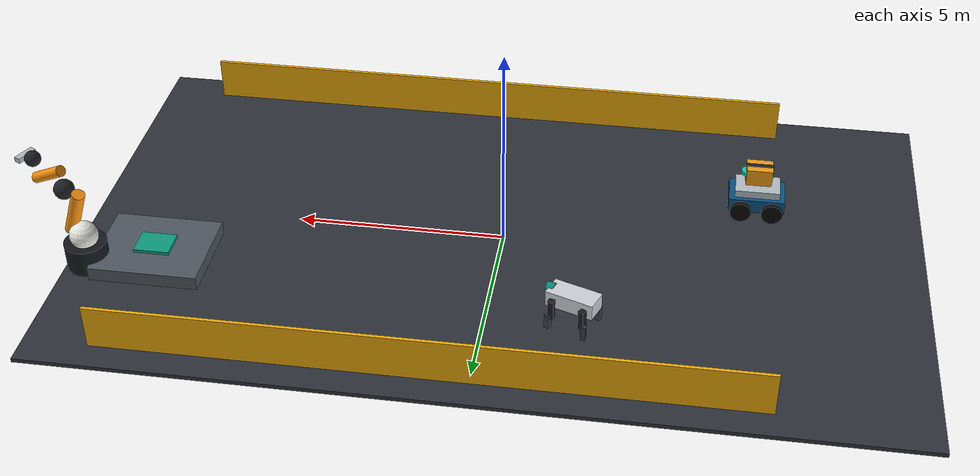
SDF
<?xml version="1.0" ?>
<sdf version="1.10">
  <world name="ump_warehouse">
    <physics name="step" type="ignored"><max_step_size>0.01</max_step_size><real_time_factor>1</real_time_factor></physics>
    <plugin filename="gz-sim-physics-system" name="gz::sim::systems::Physics"/>
    <plugin filename="gz-sim-user-commands-system" name="gz::sim::systems::UserCommands"/>
    <plugin filename="gz-sim-scene-broadcaster-system" name="gz::sim::systems::SceneBroadcaster"/>
    <scene><ambient>0.72 0.74 0.78 1</ambient><background>0.08 0.10 0.13 1</background><shadows>true</shadows></scene>
    <light type="directional" name="sun"><pose>2 -4 12 0 0 0</pose><direction>-0.45 0.25 -1</direction><diffuse>0.95 0.95 0.92 1</diffuse></light>
    <model name="floor"><static>true</static><link name="floor"><collision name="collision"><geometry><box><size>20 12 0.1</size></box></geometry></collision><visual name="visual"><geometry><box><size>20 12 0.1</size></box></geometry><material><diffuse>0.18 0.20 0.23 1</diffuse><specular>0.25 0.25 0.25 1</specular></material></visual></link></model>

    <!-- Self-contained AMR-style platform with chassis, wheels, deck and lidar. -->
    <model name="mobile-1"><static>true</static><pose>-6 -2 0.42 0 0 0</pose><link name="base">
      <visual name="chassis"><geometry><box><size>1.35 0.9 0.34</size></box></geometry><material><diffuse>0.04 0.32 0.52 1</diffuse><specular>0.4 0.4 0.4 1</specular></material></visual>
      <visual name="bumper"><pose>0.66 0 0 0 0 0</pose><geometry><box><size>0.08 0.82 0.22</size></box></geometry><material><diffuse>0.08 0.09 0.1 1</diffuse></material></visual>
      <visual name="deck"><pose>0 0 0.28 0 0 0</pose><geometry><box><size>1.08 0.72 0.18</size></box></geometry><material><diffuse>0.72 0.75 0.78 1</diffuse></material></visual>
      <visual name="lidar_stem"><pose>0.25 0 0.53 0 0 0</pose><geometry><cylinder><radius>0.055</radius><length>0.34</length></cylinder></geometry><material><diffuse>0.1 0.11 0.12 1</diffuse></material></visual>
      <visual name="lidar"><pose>0.25 0 0.72 0 0 0</pose><geometry><cylinder><radius>0.18</radius><length>0.08</length></cylinder></geometry><material><diffuse>0.02 0.85 0.68 1</diffuse><emissive>0 0.15 0.12 1</emissive></material></visual>
      <visual name="wheel_fl"><pose>0.38 0.5 -0.12 1.5708 0 0</pose><geometry><cylinder><radius>0.25</radius><length>0.14</length></cylinder></geometry><material><diffuse>0.025 0.025 0.03 1</diffuse></material></visual>
      <visual name="wheel_fr"><pose>0.38 -0.5 -0.12 1.5708 0 0</pose><geometry><cylinder><radius>0.25</radius><length>0.14</length></cylinder></geometry><material><diffuse>0.025 0.025 0.03 1</diffuse></material></visual>
      <visual name="wheel_rl"><pose>-0.38 0.5 -0.12 1.5708 0 0</pose><geometry><cylinder><radius>0.25</radius><length>0.14</length></cylinder></geometry><material><diffuse>0.025 0.025 0.03 1</diffuse></material></visual>
      <visual name="wheel_rr"><pose>-0.38 -0.5 -0.12 1.5708 0 0</pose><geometry><cylinder><radius>0.25</radius><length>0.14</length></cylinder></geometry><material><diffuse>0.025 0.025 0.03 1</diffuse></material></visual>
    </link></model>
    <model name="payload"><static>true</static><pose>-6 -2 1.12 0 0 0</pose><link name="payload"><visual name="crate"><geometry><box><size>0.62 0.5 0.42</size></box></geometry><material><diffuse>0.95 0.62 0.08 1</diffuse></material></visual><visual name="band"><geometry><box><size>0.66 0.12 0.44</size></box></geometry><material><diffuse>0.12 0.13 0.15 1</diffuse></material></visual></link></model>

    <!-- Quadruped inspection platform with four visible leg chains. -->
    <model name="inspector-1"><static>true</static><pose>-2 3 0.72 0 0 -0.35</pose><link name="body">
      <visual name="torso"><geometry><box><size>1.15 0.52 0.38</size></box></geometry><material><diffuse>0.82 0.84 0.86 1</diffuse></material></visual>
      <visual name="sensor"><pose>0.56 0 0.12 0 1.5708 0</pose><geometry><cylinder><radius>0.13</radius><length>0.18</length></cylinder></geometry><material><diffuse>0.03 0.55 0.48 1</diffuse><emissive>0 0.12 0.1 1</emissive></material></visual>
      <visual name="hip_fl"><pose>0.38 0.35 -0.18 0 0 0.15</pose><geometry><box><size>0.14 0.14 0.48</size></box></geometry><material><diffuse>0.1 0.11 0.13 1</diffuse></material></visual>
      <visual name="shin_fl"><pose>0.44 0.39 -0.53 0 0 -0.28</pose><geometry><box><size>0.12 0.12 0.42</size></box></geometry><material><diffuse>0.22 0.24 0.27 1</diffuse></material></visual>
      <visual name="hip_fr"><pose>0.38 -0.35 -0.18 0 0 -0.15</pose><geometry><box><size>0.14 0.14 0.48</size></box></geometry><material><diffuse>0.1 0.11 0.13 1</diffuse></material></visual>
      <visual name="shin_fr"><pose>0.44 -0.39 -0.53 0 0 0.28</pose><geometry><box><size>0.12 0.12 0.42</size></box></geometry><material><diffuse>0.22 0.24 0.27 1</diffuse></material></visual>
      <visual name="hip_rl"><pose>-0.38 0.35 -0.18 0 0 -0.15</pose><geometry><box><size>0.14 0.14 0.48</size></box></geometry><material><diffuse>0.1 0.11 0.13 1</diffuse></material></visual>
      <visual name="shin_rl"><pose>-0.44 0.39 -0.53 0 0 0.28</pose><geometry><box><size>0.12 0.12 0.42</size></box></geometry><material><diffuse>0.22 0.24 0.27 1</diffuse></material></visual>
      <visual name="hip_rr"><pose>-0.38 -0.35 -0.18 0 0 0.15</pose><geometry><box><size>0.14 0.14 0.48</size></box></geometry><material><diffuse>0.1 0.11 0.13 1</diffuse></material></visual>
      <visual name="shin_rr"><pose>-0.44 -0.39 -0.53 0 0 -0.28</pose><geometry><box><size>0.12 0.12 0.42</size></box></geometry><material><diffuse>0.22 0.24 0.27 1</diffuse></material></visual>
    </link></model>

    <!-- Six-axis industrial-arm silhouette with a gripper at the workcell. -->
    <model name="manipulator-1"><static>true</static><pose>9.5 2.5 0 0 0 2.7</pose><link name="arm">
      <visual name="pedestal"><pose>0 0 0.35 0 0 0</pose><geometry><cylinder><radius>0.5</radius><length>0.7</length></cylinder></geometry><material><diffuse>0.08 0.1 0.12 1</diffuse></material></visual>
      <visual name="shoulder"><pose>0 0 0.88 0 0 0</pose><geometry><sphere><radius>0.34</radius></sphere></geometry><material><diffuse>0.92 0.92 0.9 1</diffuse></material></visual>
      <visual name="upper_arm"><pose>-0.15 0 1.48 0 0.38 0</pose><geometry><cylinder><radius>0.16</radius><length>1.25</length></cylinder></geometry><material><diffuse>0.95 0.56 0.06 1</diffuse></material></visual>
      <visual name="elbow"><pose>-0.38 0 2.03 0 0 0</pose><geometry><sphere><radius>0.24</radius></sphere></geometry><material><diffuse>0.12 0.13 0.15 1</diffuse></material></visual>
      <visual name="forearm"><pose>-0.82 0 2.28 0 1.05 0</pose><geometry><cylinder><radius>0.13</radius><length>1.05</length></cylinder></geometry><material><diffuse>0.95 0.56 0.06 1</diffuse></material></visual>
      <visual name="wrist"><pose>-1.28 0 2.54 0 0 0</pose><geometry><sphere><radius>0.19</radius></sphere></geometry><material><diffuse>0.12 0.13 0.15 1</diffuse></material></visual>
      <visual name="gripper"><pose>-1.52 0 2.54 0 1.5708 0</pose><geometry><box><size>0.12 0.5 0.16</size></box></geometry><material><diffuse>0.72 0.74 0.77 1</diffuse></material></visual>
    </link></model>
    <model name="workcell"><static>true</static><pose>8 2 0.2 0 0 0</pose><link name="fixture"><visual name="table"><geometry><box><size>2.6 2.2 0.35</size></box></geometry><material><diffuse>0.32 0.35 0.39 1</diffuse></material></visual><visual name="target"><pose>0 0 0.22 0 0 0</pose><geometry><box><size>0.85 0.7 0.08</size></box></geometry><material><diffuse>0.05 0.62 0.5 1</diffuse><emissive>0 0.08 0.06 1</emissive></material></visual></link></model>
    <model name="safety-rail-left"><static>true</static><pose>1 5.3 0.55 0 0 0</pose><link name="rail"><visual name="visual"><geometry><box><size>15 0.08 1.1</size></box></geometry><material><diffuse>0.95 0.68 0.04 1</diffuse></material></visual></link></model>
    <model name="safety-rail-right"><static>true</static><pose>1 -5.3 0.55 0 0 0</pose><link name="rail"><visual name="visual"><geometry><box><size>15 0.08 1.1</size></box></geometry><material><diffuse>0.95 0.68 0.04 1</diffuse></material></visual></link></model>
  </world>
</sdf>
